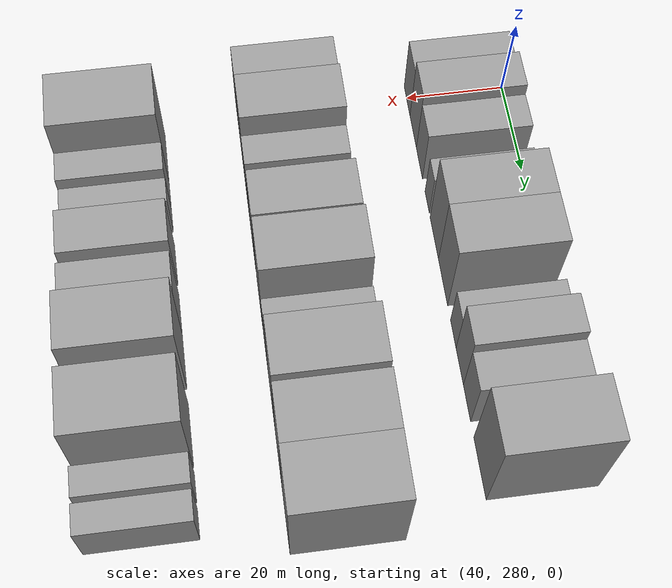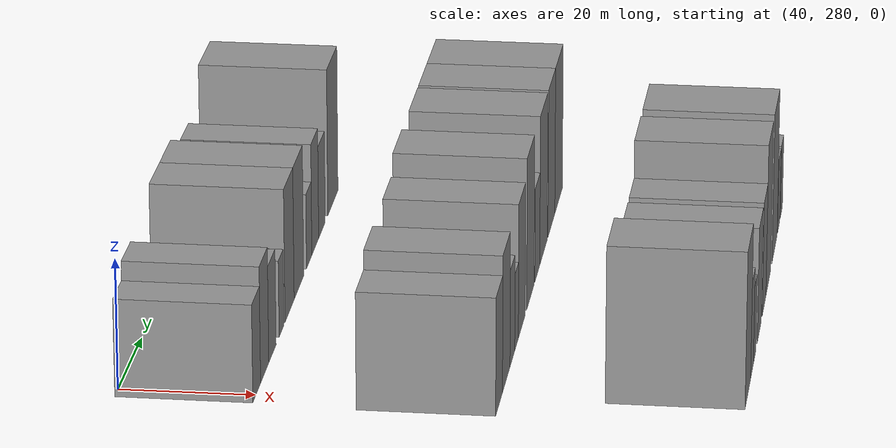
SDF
<sdf version="1.6">
 <world name="default">
  <model name="building_70">
   <static>1</static>
   <pose>50.0000 280.7598 0 0.000000 0.000000 0.000000</pose>
   <link name="link">
    <pose>0 0 7.50 0 0 0</pose>
    <collision name="collision"><geometry><box><size>20.0000 7.3303 15.0000</size></box></geometry></collision>
    <visual name="visual">
     <cast_shadows>0</cast_shadows>
     <geometry><box><size>20.0000 7.3303 15.0000</size></box></geometry>
     <material>
      <script>
       <uri>model://grey_wall/materials/scripts</uri>
       <uri>model://grey_wall/materials/textures</uri>
       <name>vrc/grey_wall</name>
      </script>
     </material>
    </visual>
   </link>
  </model>
  <model name="building_71">
   <static>1</static>
   <pose>50.0000 288.3736 0 0.000000 0.000000 0.000000</pose>
   <link name="link">
    <pose>0 0 9.00 0 0 0</pose>
    <collision name="collision"><geometry><box><size>20.0000 7.8973 18.0000</size></box></geometry></collision>
    <visual name="visual">
     <cast_shadows>0</cast_shadows>
     <geometry><box><size>20.0000 7.8973 18.0000</size></box></geometry>
     <material>
      <script>
       <uri>model://grey_wall/materials/scripts</uri>
       <uri>model://grey_wall/materials/textures</uri>
       <name>vrc/grey_wall</name>
      </script>
     </material>
    </visual>
   </link>
  </model>
  <model name="building_72">
   <static>1</static>
   <pose>50.0000 295.9462 0 0.000000 0.000000 0.000000</pose>
   <link name="link">
    <pose>0 0 7.50 0 0 0</pose>
    <collision name="collision"><geometry><box><size>20.0000 7.2479 15.0000</size></box></geometry></collision>
    <visual name="visual">
     <cast_shadows>0</cast_shadows>
     <geometry><box><size>20.0000 7.2479 15.0000</size></box></geometry>
     <material>
      <script>
       <uri>model://grey_wall/materials/scripts</uri>
       <uri>model://grey_wall/materials/textures</uri>
       <name>vrc/grey_wall</name>
      </script>
     </material>
    </visual>
   </link>
  </model>
  <model name="building_73">
   <static>1</static>
   <pose>50.0000 305.0098 0 0.000000 0.000000 0.000000</pose>
   <link name="link">
    <pose>0 0 6.00 0 0 0</pose>
    <collision name="collision"><geometry><box><size>20.0000 4.8794 12.0000</size></box></geometry></collision>
    <visual name="visual">
     <cast_shadows>0</cast_shadows>
     <geometry><box><size>20.0000 4.8794 12.0000</size></box></geometry>
     <material>
      <script>
       <uri>model://grey_wall/materials/scripts</uri>
       <uri>model://grey_wall/materials/textures</uri>
       <name>vrc/grey_wall</name>
      </script>
     </material>
    </visual>
   </link>
  </model>
  <model name="building_74">
   <static>1</static>
   <pose>50.0000 313.1352 0 0.000000 0.000000 0.000000</pose>
   <link name="link">
    <pose>0 0 10.50 0 0 0</pose>
    <collision name="collision"><geometry><box><size>20.0000 9.3714 21.0000</size></box></geometry></collision>
    <visual name="visual">
     <cast_shadows>0</cast_shadows>
     <geometry><box><size>20.0000 9.3714 21.0000</size></box></geometry>
     <material>
      <script>
       <uri>model://grey_wall/materials/scripts</uri>
       <uri>model://grey_wall/materials/textures</uri>
       <name>vrc/grey_wall</name>
      </script>
     </material>
    </visual>
   </link>
  </model>
  <model name="building_75">
   <static>1</static>
   <pose>50.0000 322.7770 0 0.000000 0.000000 0.000000</pose>
   <link name="link">
    <pose>0 0 10.50 0 0 0</pose>
    <collision name="collision"><geometry><box><size>20.0000 9.9121 21.0000</size></box></geometry></collision>
    <visual name="visual">
     <cast_shadows>0</cast_shadows>
     <geometry><box><size>20.0000 9.9121 21.0000</size></box></geometry>
     <material>
      <script>
       <uri>model://grey_wall/materials/scripts</uri>
       <uri>model://grey_wall/materials/textures</uri>
       <name>vrc/grey_wall</name>
      </script>
     </material>
    </visual>
   </link>
  </model>
  <model name="building_76">
   <static>1</static>
   <pose>50.0000 333.6040 0 0.000000 0.000000 0.000000</pose>
   <link name="link">
    <pose>0 0 6.00 0 0 0</pose>
    <collision name="collision"><geometry><box><size>20.0000 5.7421 12.0000</size></box></geometry></collision>
    <visual name="visual">
     <cast_shadows>0</cast_shadows>
     <geometry><box><size>20.0000 5.7421 12.0000</size></box></geometry>
     <material>
      <script>
       <uri>model://grey_wall/materials/scripts</uri>
       <uri>model://grey_wall/materials/textures</uri>
       <name>vrc/grey_wall</name>
      </script>
     </material>
    </visual>
   </link>
  </model>
  <model name="building_77">
   <static>1</static>
   <pose>50.0000 340.1757 0 0.000000 0.000000 0.000000</pose>
   <link name="link">
    <pose>0 0 9.00 0 0 0</pose>
    <collision name="collision"><geometry><box><size>20.0000 7.4012 18.0000</size></box></geometry></collision>
    <visual name="visual">
     <cast_shadows>0</cast_shadows>
     <geometry><box><size>20.0000 7.4012 18.0000</size></box></geometry>
     <material>
      <script>
       <uri>model://grey_wall/materials/scripts</uri>
       <uri>model://grey_wall/materials/textures</uri>
       <name>vrc/grey_wall</name>
      </script>
     </material>
    </visual>
   </link>
  </model>
  <model name="building_78">
   <static>1</static>
   <pose>50.0000 347.4239 0 0.000000 0.000000 0.000000</pose>
   <link name="link">
    <pose>0 0 7.50 0 0 0</pose>
    <collision name="collision"><geometry><box><size>20.0000 7.0953 15.0000</size></box></geometry></collision>
    <visual name="visual">
     <cast_shadows>0</cast_shadows>
     <geometry><box><size>20.0000 7.0953 15.0000</size></box></geometry>
     <material>
      <script>
       <uri>model://grey_wall/materials/scripts</uri>
       <uri>model://grey_wall/materials/textures</uri>
       <name>vrc/grey_wall</name>
      </script>
     </material>
    </visual>
   </link>
  </model>
  <model name="building_79">
   <static>1</static>
   <pose>50.0000 359.7426 0 0.000000 0.000000 0.000000</pose>
   <link name="link">
    <pose>0 0 12.00 0 0 0</pose>
    <collision name="collision"><geometry><box><size>20.0000 11.5420 24.0000</size></box></geometry></collision>
    <visual name="visual">
     <cast_shadows>0</cast_shadows>
     <geometry><box><size>20.0000 11.5420 24.0000</size></box></geometry>
     <material>
      <script>
       <uri>model://grey_wall/materials/scripts</uri>
       <uri>model://grey_wall/materials/textures</uri>
       <name>vrc/grey_wall</name>
      </script>
     </material>
    </visual>
   </link>
  </model>
  <model name="building_139">
   <static>1</static>
   <pose>85.0000 280.6278 0 0.000000 0.000000 0.000000</pose>
   <link name="link">
    <pose>0 0 9.00 0 0 0</pose>
    <collision name="collision"><geometry><box><size>20.0000 8.8332 18.0000</size></box></geometry></collision>
    <visual name="visual">
     <cast_shadows>0</cast_shadows>
     <geometry><box><size>20.0000 8.8332 18.0000</size></box></geometry>
     <material>
      <script>
       <uri>model://grey_wall/materials/scripts</uri>
       <uri>model://grey_wall/materials/textures</uri>
       <name>vrc/grey_wall</name>
      </script>
     </material>
    </visual>
   </link>
  </model>
  <model name="building_140">
   <static>1</static>
   <pose>85.0000 289.9449 0 0.000000 0.000000 0.000000</pose>
   <link name="link">
    <pose>0 0 10.50 0 0 0</pose>
    <collision name="collision"><geometry><box><size>20.0000 9.8008 21.0000</size></box></geometry></collision>
    <visual name="visual">
     <cast_shadows>0</cast_shadows>
     <geometry><box><size>20.0000 9.8008 21.0000</size></box></geometry>
     <material>
      <script>
       <uri>model://grey_wall/materials/scripts</uri>
       <uri>model://grey_wall/materials/textures</uri>
       <name>vrc/grey_wall</name>
      </script>
     </material>
    </visual>
   </link>
  </model>
  <model name="building_141">
   <static>1</static>
   <pose>85.0000 298.0287 0 0.000000 0.000000 0.000000</pose>
   <link name="link">
    <pose>0 0 7.50 0 0 0</pose>
    <collision name="collision"><geometry><box><size>20.0000 6.3668 15.0000</size></box></geometry></collision>
    <visual name="visual">
     <cast_shadows>0</cast_shadows>
     <geometry><box><size>20.0000 6.3668 15.0000</size></box></geometry>
     <material>
      <script>
       <uri>model://grey_wall/materials/scripts</uri>
       <uri>model://grey_wall/materials/textures</uri>
       <name>vrc/grey_wall</name>
      </script>
     </material>
    </visual>
   </link>
  </model>
  <model name="building_142">
   <static>1</static>
   <pose>85.0000 303.6895 0 0.000000 0.000000 0.000000</pose>
   <link name="link">
    <pose>0 0 6.00 0 0 0</pose>
    <collision name="collision"><geometry><box><size>20.0000 4.9549 12.0000</size></box></geometry></collision>
    <visual name="visual">
     <cast_shadows>0</cast_shadows>
     <geometry><box><size>20.0000 4.9549 12.0000</size></box></geometry>
     <material>
      <script>
       <uri>model://grey_wall/materials/scripts</uri>
       <uri>model://grey_wall/materials/textures</uri>
       <name>vrc/grey_wall</name>
      </script>
     </material>
    </visual>
   </link>
  </model>
  <model name="building_143">
   <static>1</static>
   <pose>85.0000 310.8804 0 0.000000 0.000000 0.000000</pose>
   <link name="link">
    <pose>0 0 10.50 0 0 0</pose>
    <collision name="collision"><geometry><box><size>20.0000 9.4268 21.0000</size></box></geometry></collision>
    <visual name="visual">
     <cast_shadows>0</cast_shadows>
     <geometry><box><size>20.0000 9.4268 21.0000</size></box></geometry>
     <material>
      <script>
       <uri>model://grey_wall/materials/scripts</uri>
       <uri>model://grey_wall/materials/textures</uri>
       <name>vrc/grey_wall</name>
      </script>
     </material>
    </visual>
   </link>
  </model>
  <model name="building_144">
   <static>1</static>
   <pose>85.0000 322.8566 0 0.000000 0.000000 0.000000</pose>
   <link name="link">
    <pose>0 0 12.00 0 0 0</pose>
    <collision name="collision"><geometry><box><size>20.0000 10.5258 24.0000</size></box></geometry></collision>
    <visual name="visual">
     <cast_shadows>0</cast_shadows>
     <geometry><box><size>20.0000 10.5258 24.0000</size></box></geometry>
     <material>
      <script>
       <uri>model://grey_wall/materials/scripts</uri>
       <uri>model://grey_wall/materials/textures</uri>
       <name>vrc/grey_wall</name>
      </script>
     </material>
    </visual>
   </link>
  </model>
  <model name="building_145">
   <static>1</static>
   <pose>85.0000 332.7528 0 0.000000 0.000000 0.000000</pose>
   <link name="link">
    <pose>0 0 7.50 0 0 0</pose>
    <collision name="collision"><geometry><box><size>20.0000 7.2665 15.0000</size></box></geometry></collision>
    <visual name="visual">
     <cast_shadows>0</cast_shadows>
     <geometry><box><size>20.0000 7.2665 15.0000</size></box></geometry>
     <material>
      <script>
       <uri>model://grey_wall/materials/scripts</uri>
       <uri>model://grey_wall/materials/textures</uri>
       <name>vrc/grey_wall</name>
      </script>
     </material>
    </visual>
   </link>
  </model>
  <model name="building_146">
   <static>1</static>
   <pose>85.0000 341.8696 0 0.000000 0.000000 0.000000</pose>
   <link name="link">
    <pose>0 0 12.00 0 0 0</pose>
    <collision name="collision"><geometry><box><size>20.0000 10.9670 24.0000</size></box></geometry></collision>
    <visual name="visual">
     <cast_shadows>0</cast_shadows>
     <geometry><box><size>20.0000 10.9670 24.0000</size></box></geometry>
     <material>
      <script>
       <uri>model://grey_wall/materials/scripts</uri>
       <uri>model://grey_wall/materials/textures</uri>
       <name>vrc/grey_wall</name>
      </script>
     </material>
    </visual>
   </link>
  </model>
  <model name="building_147">
   <static>1</static>
   <pose>85.0000 353.6257 0 0.000000 0.000000 0.000000</pose>
   <link name="link">
    <pose>0 0 12.00 0 0 0</pose>
    <collision name="collision"><geometry><box><size>20.0000 10.5453 24.0000</size></box></geometry></collision>
    <visual name="visual">
     <cast_shadows>0</cast_shadows>
     <geometry><box><size>20.0000 10.5453 24.0000</size></box></geometry>
     <material>
      <script>
       <uri>model://grey_wall/materials/scripts</uri>
       <uri>model://grey_wall/materials/textures</uri>
       <name>vrc/grey_wall</name>
      </script>
     </material>
    </visual>
   </link>
  </model>
  <model name="building_148">
   <static>1</static>
   <pose>85.0000 364.7622 0 0.000000 0.000000 0.000000</pose>
   <link name="link">
    <pose>0 0 12.00 0 0 0</pose>
    <collision name="collision"><geometry><box><size>20.0000 11.7276 24.0000</size></box></geometry></collision>
    <visual name="visual">
     <cast_shadows>0</cast_shadows>
     <geometry><box><size>20.0000 11.7276 24.0000</size></box></geometry>
     <material>
      <script>
       <uri>model://grey_wall/materials/scripts</uri>
       <uri>model://grey_wall/materials/textures</uri>
       <name>vrc/grey_wall</name>
      </script>
     </material>
    </visual>
   </link>
  </model>
  <model name="building_223">
   <static>1</static>
   <pose>120.0000 288.5257 0 0.000000 0.000000 0.000000</pose>
   <link name="link">
    <pose>0 0 12.00 0 0 0</pose>
    <collision name="collision"><geometry><box><size>20.0000 11.4810 24.0000</size></box></geometry></collision>
    <visual name="visual">
     <cast_shadows>0</cast_shadows>
     <geometry><box><size>20.0000 11.4810 24.0000</size></box></geometry>
     <material>
      <script>
       <uri>model://grey_wall/materials/scripts</uri>
       <uri>model://grey_wall/materials/textures</uri>
       <name>vrc/grey_wall</name>
      </script>
     </material>
    </visual>
   </link>
  </model>
  <model name="building_224">
   <static>1</static>
   <pose>120.0000 297.2767 0 0.000000 0.000000 0.000000</pose>
   <link name="link">
    <pose>0 0 7.50 0 0 0</pose>
    <collision name="collision"><geometry><box><size>20.0000 6.0209 15.0000</size></box></geometry></collision>
    <visual name="visual">
     <cast_shadows>0</cast_shadows>
     <geometry><box><size>20.0000 6.0209 15.0000</size></box></geometry>
     <material>
      <script>
       <uri>model://grey_wall/materials/scripts</uri>
       <uri>model://grey_wall/materials/textures</uri>
       <name>vrc/grey_wall</name>
      </script>
     </material>
    </visual>
   </link>
  </model>
  <model name="building_225">
   <static>1</static>
   <pose>120.0000 302.8234 0 0.000000 0.000000 0.000000</pose>
   <link name="link">
    <pose>0 0 6.00 0 0 0</pose>
    <collision name="collision"><geometry><box><size>20.0000 5.0725 12.0000</size></box></geometry></collision>
    <visual name="visual">
     <cast_shadows>0</cast_shadows>
     <geometry><box><size>20.0000 5.0725 12.0000</size></box></geometry>
     <material>
      <script>
       <uri>model://grey_wall/materials/scripts</uri>
       <uri>model://grey_wall/materials/textures</uri>
       <name>vrc/grey_wall</name>
      </script>
     </material>
    </visual>
   </link>
  </model>
  <model name="building_226">
   <static>1</static>
   <pose>120.0000 312.7203 0 0.000000 0.000000 0.000000</pose>
   <link name="link">
    <pose>0 0 9.00 0 0 0</pose>
    <collision name="collision"><geometry><box><size>20.0000 8.7213 18.0000</size></box></geometry></collision>
    <visual name="visual">
     <cast_shadows>0</cast_shadows>
     <geometry><box><size>20.0000 8.7213 18.0000</size></box></geometry>
     <material>
      <script>
       <uri>model://grey_wall/materials/scripts</uri>
       <uri>model://grey_wall/materials/textures</uri>
       <name>vrc/grey_wall</name>
      </script>
     </material>
    </visual>
   </link>
  </model>
  <model name="building_227">
   <static>1</static>
   <pose>120.0000 323.2605 0 0.000000 0.000000 0.000000</pose>
   <link name="link">
    <pose>0 0 9.00 0 0 0</pose>
    <collision name="collision"><geometry><box><size>20.0000 8.3591 18.0000</size></box></geometry></collision>
    <visual name="visual">
     <cast_shadows>0</cast_shadows>
     <geometry><box><size>20.0000 8.3591 18.0000</size></box></geometry>
     <material>
      <script>
       <uri>model://grey_wall/materials/scripts</uri>
       <uri>model://grey_wall/materials/textures</uri>
       <name>vrc/grey_wall</name>
      </script>
     </material>
    </visual>
   </link>
  </model>
  <model name="building_228">
   <static>1</static>
   <pose>120.0000 332.8686 0 0.000000 0.000000 0.000000</pose>
   <link name="link">
    <pose>0 0 12.00 0 0 0</pose>
    <collision name="collision"><geometry><box><size>20.0000 10.8572 24.0000</size></box></geometry></collision>
    <visual name="visual">
     <cast_shadows>0</cast_shadows>
     <geometry><box><size>20.0000 10.8572 24.0000</size></box></geometry>
     <material>
      <script>
       <uri>model://grey_wall/materials/scripts</uri>
       <uri>model://grey_wall/materials/textures</uri>
       <name>vrc/grey_wall</name>
      </script>
     </material>
    </visual>
   </link>
  </model>
  <model name="building_229">
   <static>1</static>
   <pose>120.0000 347.2722 0 0.000000 0.000000 0.000000</pose>
   <link name="link">
    <pose>0 0 12.00 0 0 0</pose>
    <collision name="collision"><geometry><box><size>20.0000 11.9499 24.0000</size></box></geometry></collision>
    <visual name="visual">
     <cast_shadows>0</cast_shadows>
     <geometry><box><size>20.0000 11.9499 24.0000</size></box></geometry>
     <material>
      <script>
       <uri>model://grey_wall/materials/scripts</uri>
       <uri>model://grey_wall/materials/textures</uri>
       <name>vrc/grey_wall</name>
      </script>
     </material>
    </visual>
   </link>
  </model>
  <model name="building_230">
   <static>1</static>
   <pose>120.0000 356.9679 0 0.000000 0.000000 0.000000</pose>
   <link name="link">
    <pose>0 0 6.00 0 0 0</pose>
    <collision name="collision"><geometry><box><size>20.0000 5.4414 12.0000</size></box></geometry></collision>
    <visual name="visual">
     <cast_shadows>0</cast_shadows>
     <geometry><box><size>20.0000 5.4414 12.0000</size></box></geometry>
     <material>
      <script>
       <uri>model://grey_wall/materials/scripts</uri>
       <uri>model://grey_wall/materials/textures</uri>
       <name>vrc/grey_wall</name>
      </script>
     </material>
    </visual>
   </link>
  </model>
  <model name="building_231">
   <static>1</static>
   <pose>120.0000 363.4227 0 0.000000 0.000000 0.000000</pose>
   <link name="link">
    <pose>0 0 6.00 0 0 0</pose>
    <collision name="collision"><geometry><box><size>20.0000 5.4683 12.0000</size></box></geometry></collision>
    <visual name="visual">
     <cast_shadows>0</cast_shadows>
     <geometry><box><size>20.0000 5.4683 12.0000</size></box></geometry>
     <material>
      <script>
       <uri>model://grey_wall/materials/scripts</uri>
       <uri>model://grey_wall/materials/textures</uri>
       <name>vrc/grey_wall</name>
      </script>
     </material>
    </visual>
   </link>
  </model>
 </world>
</sdf>
